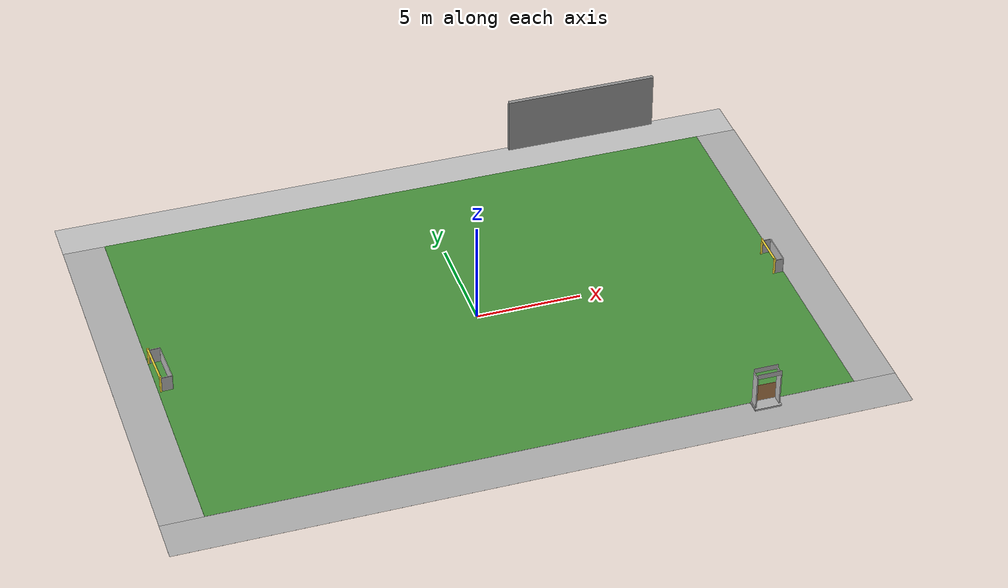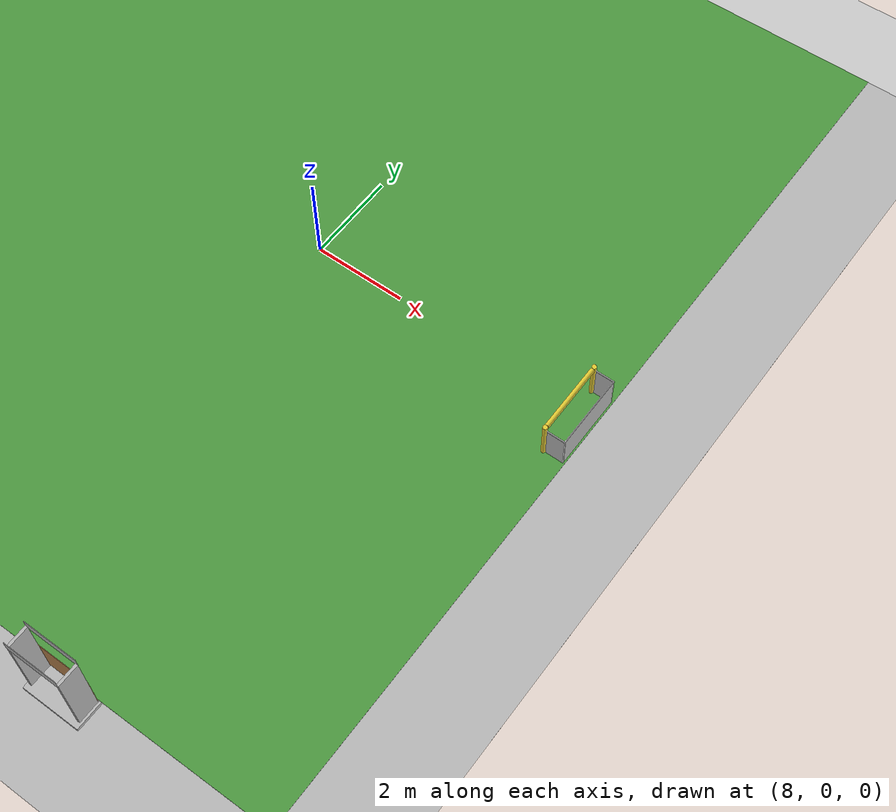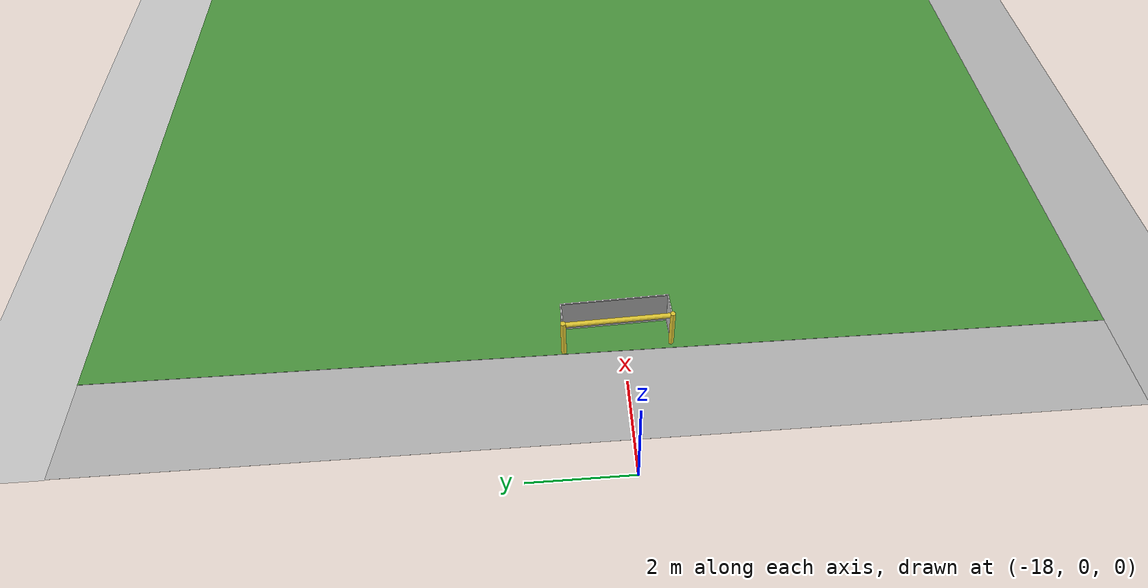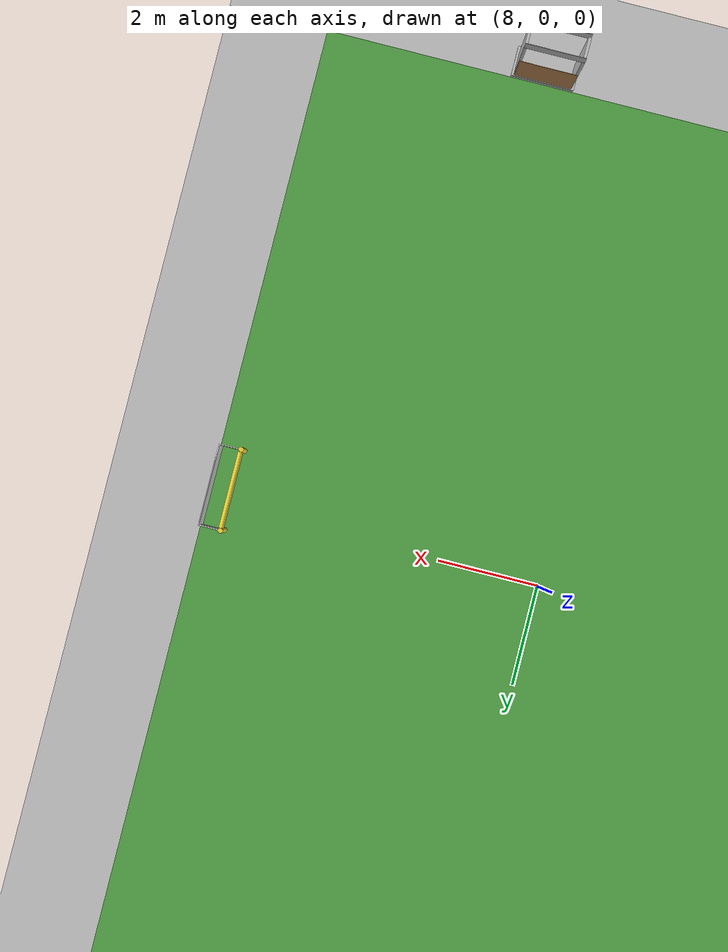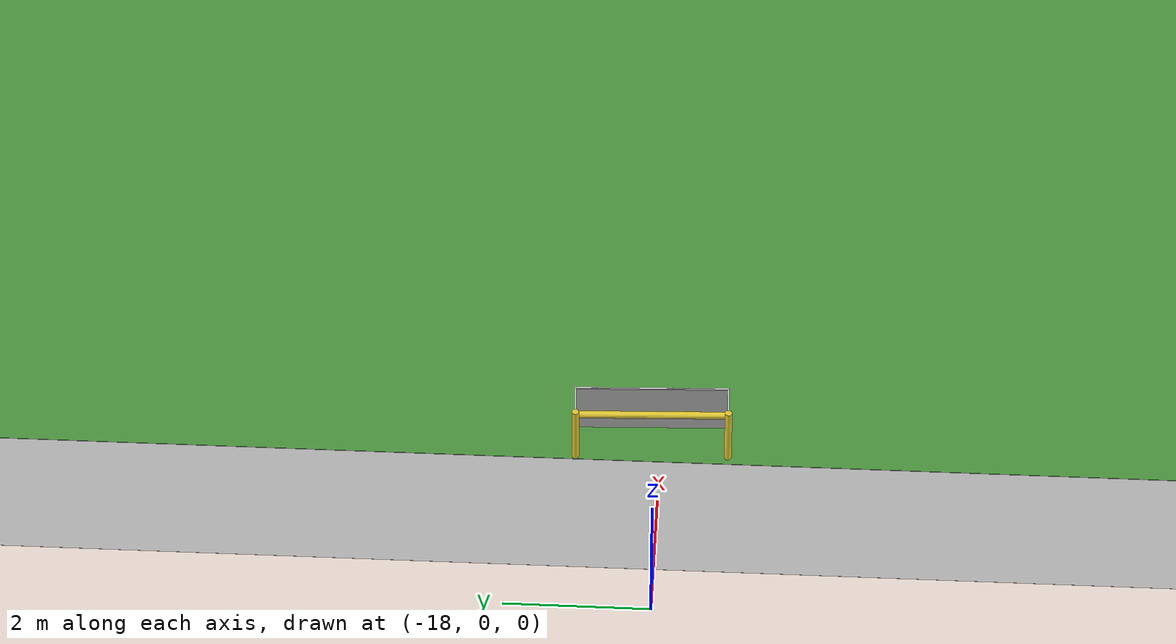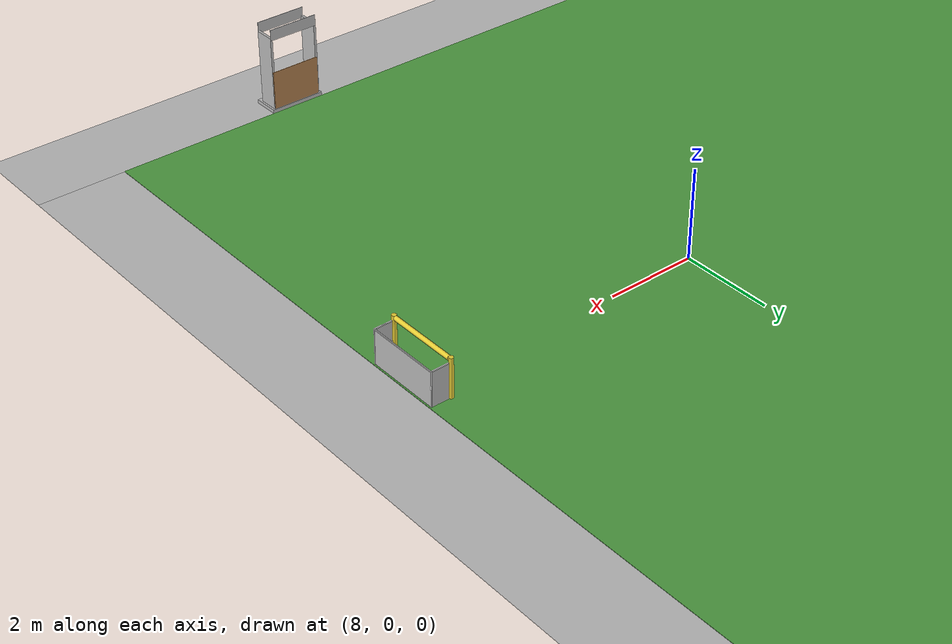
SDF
<sdf version="1.6">
 <world name="default">
  <physics name="default_physics" default="0" type="ode">
   <ode>
    <solver>
     <type>quick</type>
     <iters>100</iters>
     <sor>1</sor>
     <use_dynamic_moi_rescaling>0</use_dynamic_moi_rescaling>
    </solver>
    <constraints>
     <cfm>0</cfm>
     <erp>0.9</erp>
     <contact_max_correcting_vel>0.1</contact_max_correcting_vel>
     <contact_surface_layer>0</contact_surface_layer>
    </constraints>
   </ode>
   <real_time_update_rate>-1</real_time_update_rate>
   <max_step_size>0.001</max_step_size>
   <real_time_factor>1</real_time_factor>
  </physics>
  <model name="ground_plane">
   <static>1</static>
   <link name="link">
    <collision name="collision">
     <geometry><plane><normal>0 0 1</normal><size>5000 5000</size></plane></geometry>
     <surface><friction><ode><mu>1</mu><mu2>1</mu2></ode></friction></surface>
    </collision>
   </link>
  </model>
  <light name="sun" type="directional">
   <pose>0 0 10 0 -0 0</pose>
   <diffuse>0.8 0.8 0.8 1</diffuse>
   <specular>0.2 0.2 0.2 1</specular>
   <attenuation>
    <range>1000</range>
    <constant>0.9</constant>
    <linear>0.01</linear>
    <quadratic>0.001</quadratic>
   </attenuation>
   <direction>-0.5 0.1 -0.9</direction>
  </light>
  <gravity>0 0 -9.8</gravity>
  <magnetic_field>6e-06 2.3e-05 -4.2e-05</magnetic_field>
  <atmosphere type="adiabatic"/>
  <scene><ambient>0.4 0.4 0.4 1</ambient><background>0.7 0.7 0.7 1</background><shadows>1</shadows></scene>
  <spherical_coordinates>
   <surface_model>EARTH_WGS84</surface_model>
   <latitude_deg>0</latitude_deg>
   <longitude_deg>0</longitude_deg>
   <elevation>0</elevation>
   <heading_deg>0</heading_deg>
  </spherical_coordinates>
  <model name="robocup_3d_field">
   <static>1</static>
   <link name="field">
    <pose>0 0 0.01 0 -0 0</pose>
    <collision name="collision">
     <geometry><plane><normal>0 0 1</normal><size>30 20</size></plane></geometry>
     <surface><friction><ode><mu>100</mu><mu2>50</mu2></ode></friction></surface>
    </collision>
    <visual name="base1">
     <pose>0 11 0.001 0 -0 0</pose>
     <cast_shadows>0</cast_shadows>
     <geometry><plane><normal>0 0 1</normal><size>34 2</size></plane></geometry>
     <material>
      <script>
       <uri>model://robocup_3Dsim_field/materials/scripts/</uri>
       <uri>model://robocup_3Dsim_field/materials/textures/</uri>
       <name>RoboCup/FieldBorder</name>
      </script>
     </material>
    </visual>
    <visual name="base2">
     <pose>0 -11 0.001 0 -0 0</pose>
     <cast_shadows>0</cast_shadows>
     <geometry><plane><normal>0 0 1</normal><size>34 2</size></plane></geometry>
     <material>
      <script>
       <uri>model://robocup_3Dsim_field/materials/scripts/</uri>
       <uri>model://robocup_3Dsim_field/materials/textures/</uri>
       <name>RoboCup/FieldBorder</name>
      </script>
     </material>
    </visual>
    <visual name="base3">
     <pose>16 0 0.001 0 -0 0</pose>
     <cast_shadows>0</cast_shadows>
     <geometry><plane><normal>0 0 1</normal><size>2 20</size></plane></geometry>
     <material>
      <script>
       <uri>model://robocup_3Dsim_field/materials/scripts/</uri>
       <uri>model://robocup_3Dsim_field/materials/textures/</uri>
       <name>RoboCup/FieldBorder</name>
      </script>
     </material>
    </visual>
    <visual name="base4">
     <pose>-16 0 0.001 0 -0 0</pose>
     <cast_shadows>0</cast_shadows>
     <geometry><plane><normal>0 0 1</normal><size>2 20</size></plane></geometry>
     <material>
      <script>
       <uri>model://robocup_3Dsim_field/materials/scripts/</uri>
       <uri>model://robocup_3Dsim_field/materials/textures/</uri>
       <name>RoboCup/FieldBorder</name>
      </script>
     </material>
    </visual>
    <visual name="carpet">
     <cast_shadows>0</cast_shadows>
     <geometry><plane><normal>0 0 1</normal><size>30 20</size></plane></geometry>
     <material>
      <script>
       <uri>model://robocup_3Dsim_field/materials/scripts/</uri>
       <uri>model://robocup_3Dsim_field/materials/textures/</uri>
       <name>RoboCup/Grass</name>
      </script>
     </material>
    </visual>
   </link>
   <pose>-0.280458 0.370204 0 0 -0 0</pose>
  </model>
  <model name="RoboCup 2014 SPL Goal">
   <static>1</static>
   <link name="left_post">
    <pose>0 0.8 0.45 0 -0 0</pose>
    <collision name="collision">
     <geometry><cylinder><radius>0.05</radius><length>0.9</length></cylinder></geometry>
    </collision>
    <visual name="visual">
     <geometry><cylinder><radius>0.05</radius><length>0.9</length></cylinder></geometry>
     <material>
      <script><uri>file://media/materials/scripts/gazebo.material</uri><name>Gazebo/ZincYellow</name></script>
     </material>
    </visual>
   </link>
   <link name="left_support_horiz_lower">
    <pose>0.24 0.8 0.01 0 -0 0</pose>
    <collision name="collision"><geometry><box><size>0.38 0.02 0.02</size></box></geometry></collision>
    <visual name="visual">
     <geometry><box><size>0.38 0.02 0.02</size></box></geometry>
     <material>
      <script><uri>file://media/materials/scripts/gazebo.material</uri><name>Gazebo/White</name></script>
     </material>
    </visual>
   </link>
   <link name="left_support_horiz_upper">
    <pose>0.24 0.8 0.79 0 -0 0</pose>
    <collision name="collision"><geometry><box><size>0.38 0.02 0.02</size></box></geometry></collision>
    <visual name="visual">
     <geometry><box><size>0.38 0.02 0.02</size></box></geometry>
     <material>
      <script><uri>file://media/materials/scripts/gazebo.material</uri><name>Gazebo/White</name></script>
     </material>
    </visual>
   </link>
   <link name="left_support_vertical">
    <pose>0.44 0.8 0.4 3.14159 1.57079 3.14159</pose>
    <collision name="collision"><geometry><box><size>0.8 0.02 0.02</size></box></geometry></collision>
    <visual name="visual">
     <geometry><box><size>0.8 0.02 0.02</size></box></geometry>
     <material>
      <script><uri>file://media/materials/scripts/gazebo.material</uri><name>Gazebo/White</name></script>
     </material>
    </visual>
   </link>
   <link name="right_support_horiz_lower">
    <pose>0.24 -0.8 0.01 0 -0 0</pose>
    <collision name="collision"><geometry><box><size>0.38 0.02 0.02</size></box></geometry></collision>
    <visual name="visual">
     <geometry><box><size>0.38 0.02 0.02</size></box></geometry>
     <material>
      <script><uri>file://media/materials/scripts/gazebo.material</uri><name>Gazebo/White</name></script>
     </material>
    </visual>
   </link>
   <link name="right_support_horiz_upper">
    <pose>0.24 -0.8 0.79 0 -0 0</pose>
    <collision name="collision"><geometry><box><size>0.38 0.02 0.02</size></box></geometry></collision>
    <visual name="visual">
     <geometry><box><size>0.38 0.02 0.02</size></box></geometry>
     <material>
      <script><uri>file://media/materials/scripts/gazebo.material</uri><name>Gazebo/White</name></script>
     </material>
    </visual>
   </link>
   <link name="right_support_vertical">
    <pose>0.44 -0.8 0.4 3.14159 1.57079 3.14159</pose>
    <collision name="collision"><geometry><box><size>0.8 0.02 0.02</size></box></geometry></collision>
    <visual name="visual">
     <geometry><box><size>0.8 0.02 0.02</size></box></geometry>
     <material>
      <script><uri>file://media/materials/scripts/gazebo.material</uri><name>Gazebo/White</name></script>
     </material>
    </visual>
   </link>
   <link name="center_support_horiz_lower">
    <pose>0.44 0 0.01 3.14159 1.57079 3.14159</pose>
    <collision name="collision"><geometry><box><size>0.02 1.58 0.02</size></box></geometry></collision>
    <visual name="visual">
     <geometry><box><size>0.02 1.58 0.02</size></box></geometry>
     <material>
      <script><uri>file://media/materials/scripts/gazebo.material</uri><name>Gazebo/White</name></script>
     </material>
    </visual>
   </link>
   <link name="center_support_horiz_upper">
    <pose>0.44 0 0.79 3.14159 1.57079 3.14159</pose>
    <collision name="collision"><geometry><box><size>0.02 1.58 0.02</size></box></geometry></collision>
    <visual name="visual">
     <geometry><box><size>0.02 1.58 0.02</size></box></geometry>
     <material>
      <script><uri>file://media/materials/scripts/gazebo.material</uri><name>Gazebo/White</name></script>
     </material>
    </visual>
   </link>
   <link name="right_post">
    <pose>0 -0.8 0.45 0 -0 0</pose>
    <collision name="collision">
     <geometry><cylinder><radius>0.05</radius><length>0.9</length></cylinder></geometry>
    </collision>
    <visual name="visual">
     <geometry><cylinder><radius>0.05</radius><length>0.9</length></cylinder></geometry>
     <material>
      <script><uri>file://media/materials/scripts/gazebo.material</uri><name>Gazebo/ZincYellow</name></script>
     </material>
    </visual>
   </link>
   <link name="crossbar">
    <pose>0 0 0.85 1.57 1.57 0</pose>
    <collision name="collision">
     <geometry><cylinder><radius>0.05</radius><length>1.5</length></cylinder></geometry>
    </collision>
    <visual name="visual">
     <geometry><cylinder><radius>0.05</radius><length>1.5</length></cylinder></geometry>
     <material>
      <script><uri>file://media/materials/scripts/gazebo.material</uri><name>Gazebo/ZincYellow</name></script>
     </material>
    </visual>
   </link>
   <link name="center_net">
    <pose>0.44 0 0.4 0 -0 0</pose>
    <collision name="collision"><geometry><box><size>0.01 1.6 0.8</size></box></geometry></collision>
    <visual name="visual">
     <geometry><box><size>0.01 1.6 0.8</size></box></geometry>
     <material>
      <script>
       <uri>model://robocup09_spl_field/materials/scripts/</uri>
       <uri>model://robocup09_spl_field/materials/textures/</uri>
       <name>RoboCup/Net</name>
      </script>
     </material>
    </visual>
   </link>
   <link name="left_net">
    <pose>0.24 0.8 0.4 0 -0 0</pose>
    <collision name="collision"><geometry><box><size>0.38 0.01 0.76</size></box></geometry></collision>
    <visual name="visual">
     <geometry><box><size>0.38 0.01 0.76</size></box></geometry>
     <material>
      <script>
       <uri>model://robocup09_spl_field/materials/scripts/</uri>
       <uri>model://robocup09_spl_field/materials/textures/</uri>
       <name>RoboCup/Net</name>
      </script>
     </material>
    </visual>
   </link>
   <link name="right_net">
    <pose>0.24 -0.8 0.4 0 -0 0</pose>
    <collision name="collision"><geometry><box><size>0.38 0.01 0.76</size></box></geometry></collision>
    <visual name="visual">
     <geometry><box><size>0.38 0.01 0.76</size></box></geometry>
     <material>
      <script>
       <uri>model://robocup09_spl_field/materials/scripts/</uri>
       <uri>model://robocup09_spl_field/materials/textures/</uri>
       <name>RoboCup/Net</name>
      </script>
     </material>
    </visual>
   </link>
   <pose>14.2398 -0.350873 0 0 -0 0</pose>
  </model>
  <model name="robocup_3d_goal">
   <static>1</static>
   <link name="left_post">
    <pose>0 1.05 0.45 0 -0 0</pose>
    <collision name="collision">
     <geometry><cylinder><radius>0.05</radius><length>0.9</length></cylinder></geometry>
    </collision>
    <visual name="visual">
     <geometry><cylinder><radius>0.05</radius><length>0.9</length></cylinder></geometry>
     <material>
      <script><uri>file://media/materials/scripts/gazebo.material</uri><name>Gazebo/ZincYellow</name></script>
     </material>
    </visual>
   </link>
   <link name="left_support_horiz_lower">
    <pose>0.3 1.05 0.01 0 -0 0</pose>
    <collision name="collision"><geometry><box><size>0.5 0.02 0.02</size></box></geometry></collision>
    <visual name="visual">
     <geometry><box><size>0.5 0.02 0.02</size></box></geometry>
     <material>
      <script><uri>file://media/materials/scripts/gazebo.material</uri><name>Gazebo/White</name></script>
     </material>
    </visual>
   </link>
   <link name="left_support_horiz_upper">
    <pose>0.3 1.05 0.79 0 -0 0</pose>
    <collision name="collision"><geometry><box><size>0.5 0.02 0.02</size></box></geometry></collision>
    <visual name="visual">
     <geometry><box><size>0.5 0.02 0.02</size></box></geometry>
     <material>
      <script><uri>file://media/materials/scripts/gazebo.material</uri><name>Gazebo/White</name></script>
     </material>
    </visual>
   </link>
   <link name="left_support_vertical">
    <pose>0.56 1.05 0.4 3.14159 1.57079 3.14159</pose>
    <collision name="collision"><geometry><box><size>0.8 0.02 0.02</size></box></geometry></collision>
    <visual name="visual">
     <geometry><box><size>0.8 0.02 0.02</size></box></geometry>
     <material>
      <script><uri>file://media/materials/scripts/gazebo.material</uri><name>Gazebo/White</name></script>
     </material>
    </visual>
   </link>
   <link name="right_support_horiz_lower">
    <pose>0.3 -1.05 0.01 0 -0 0</pose>
    <collision name="collision"><geometry><box><size>0.5 0.02 0.02</size></box></geometry></collision>
    <visual name="visual">
     <geometry><box><size>0.5 0.02 0.02</size></box></geometry>
     <material>
      <script><uri>file://media/materials/scripts/gazebo.material</uri><name>Gazebo/White</name></script>
     </material>
    </visual>
   </link>
   <link name="right_support_horiz_upper">
    <pose>0.3 -1.05 0.79 0 -0 0</pose>
    <collision name="collision"><geometry><box><size>0.5 0.02 0.02</size></box></geometry></collision>
    <visual name="visual">
     <geometry><box><size>0.5 0.02 0.02</size></box></geometry>
     <material>
      <script><uri>file://media/materials/scripts/gazebo.material</uri><name>Gazebo/White</name></script>
     </material>
    </visual>
   </link>
   <link name="right_support_vertical">
    <pose>0.56 -1.05 0.4 3.14159 1.57079 3.14159</pose>
    <collision name="collision"><geometry><box><size>0.8 0.02 0.02</size></box></geometry></collision>
    <visual name="visual">
     <geometry><box><size>0.8 0.02 0.02</size></box></geometry>
     <material>
      <script><uri>file://media/materials/scripts/gazebo.material</uri><name>Gazebo/White</name></script>
     </material>
    </visual>
   </link>
   <link name="center_support_horiz_lower">
    <pose>0.56 0 0.01 3.14159 1.57079 3.14159</pose>
    <collision name="collision"><geometry><box><size>0.02 2.08 0.02</size></box></geometry></collision>
    <visual name="visual">
     <geometry><box><size>0.02 2.08 0.02</size></box></geometry>
     <material>
      <script><uri>file://media/materials/scripts/gazebo.material</uri><name>Gazebo/White</name></script>
     </material>
    </visual>
   </link>
   <link name="center_support_horiz_upper">
    <pose>0.56 0 0.79 3.14159 1.57079 3.14159</pose>
    <collision name="collision"><geometry><box><size>0.02 2.08 0.02</size></box></geometry></collision>
    <visual name="visual">
     <geometry><box><size>0.02 2.08 0.02</size></box></geometry>
     <material>
      <script><uri>file://media/materials/scripts/gazebo.material</uri><name>Gazebo/White</name></script>
     </material>
    </visual>
   </link>
   <link name="right_post">
    <pose>0 -1.05 0.45 0 -0 0</pose>
    <collision name="collision">
     <geometry><cylinder><radius>0.05</radius><length>0.9</length></cylinder></geometry>
    </collision>
    <visual name="visual">
     <geometry><cylinder><radius>0.05</radius><length>0.9</length></cylinder></geometry>
     <material>
      <script><uri>file://media/materials/scripts/gazebo.material</uri><name>Gazebo/ZincYellow</name></script>
     </material>
    </visual>
   </link>
   <link name="crossbar">
    <pose>0 0 0.85 1.57 1.57 0</pose>
    <collision name="collision">
     <geometry><cylinder><radius>0.05</radius><length>2</length></cylinder></geometry>
    </collision>
    <visual name="visual">
     <geometry><cylinder><radius>0.05</radius><length>2</length></cylinder></geometry>
     <material>
      <script><uri>file://media/materials/scripts/gazebo.material</uri><name>Gazebo/ZincYellow</name></script>
     </material>
    </visual>
   </link>
   <link name="center_net">
    <pose>0.56 0 0.4 0 -0 0</pose>
    <collision name="collision"><geometry><box><size>0.01 2.1 0.8</size></box></geometry></collision>
    <visual name="visual">
     <geometry><box><size>0.01 2.1 0.8</size></box></geometry>
     <material>
      <script>
       <uri>model://robocup09_spl_field/materials/scripts/</uri>
       <uri>model://robocup09_spl_field/materials/textures/</uri>
       <name>RoboCup/Net</name>
      </script>
     </material>
    </visual>
   </link>
   <link name="left_net">
    <pose>0.3 1.05 0.4 0 -0 0</pose>
    <collision name="collision"><geometry><box><size>0.5 0.01 0.76</size></box></geometry></collision>
    <visual name="visual">
     <geometry><box><size>0.5 0.01 0.76</size></box></geometry>
     <material>
      <script>
       <uri>model://robocup09_spl_field/materials/scripts/</uri>
       <uri>model://robocup09_spl_field/materials/textures/</uri>
       <name>RoboCup/Net</name>
      </script>
     </material>
    </visual>
   </link>
   <link name="right_net">
    <pose>0.3 -1.05 0.4 0 -0 0</pose>
    <collision name="collision"><geometry><box><size>0.5 0.01 0.76</size></box></geometry></collision>
    <visual name="visual">
     <geometry><box><size>0.5 0.01 0.76</size></box></geometry>
     <material>
      <script>
       <uri>model://robocup09_spl_field/materials/scripts/</uri>
       <uri>model://robocup09_spl_field/materials/textures/</uri>
       <name>RoboCup/Net</name>
      </script>
     </material>
    </visual>
   </link>
   <pose>-15.1906 0.117807 0 0 -0 0.036898</pose>
  </model>
  <model name="grey_wall">
   <static>1</static>
   <link name="link">
    <pose>0 0 1.4 0 -0 0</pose>
    <collision name="collision"><geometry><box><size>7.5 0.2 2.8</size></box></geometry></collision>
    <visual name="visual">
     <cast_shadows>0</cast_shadows>
     <geometry><box><size>7.5 0.2 2.8</size></box></geometry>
     <material>
      <script>
       <uri>model://grey_wall/materials/scripts</uri>
       <uri>model://grey_wall/materials/textures</uri>
       <name>vrc/grey_wall</name>
      </script>
     </material>
    </visual>
   </link>
   <pose>9.22771 12.1917 0 0 -0 0</pose>
  </model>
  <model name="frc2016_drawbridge">
   <link name="base">
    <inertial>
     <mass>10</mass>
     <pose>0 0 1 0 -0 0</pose>
     <inertia><ixx>3.64907</ixx><ixy>0</ixy><ixz>0</ixz><iyy>4.67075</iyy><iyz>0</iyz><izz>1.66649</izz></inertia>
    </inertial>
    <visual name="platform">
     <pose>0 0 0.0425 0 -0 0</pose>
     <geometry><box><size>1.27 0.5969 0.085</size></box></geometry>
    </visual>
    <collision name="platform">
     <pose>0 0 0.0425 0 -0 0</pose>
     <geometry><box><size>1.27 0.5969 0.085</size></box></geometry>
    </collision>
    <visual name="right_wall">
     <pose>0.55879 0.04444 0.889 0 -0 0</pose>
     <geometry><box><size>0.05715 0.45698 1.77165</size></box></geometry>
    </visual>
    <collision name="right_wall">
     <pose>0.55879 0.04444 0.889 0 -0 0</pose>
     <geometry><box><size>0.05715 0.45698 1.77165</size></box></geometry>
    </collision>
    <visual name="left_wall">
     <pose>-0.55879 0.04444 0.889 0 -0 0</pose>
     <geometry><box><size>0.05715 0.45698 1.77165</size></box></geometry>
    </visual>
    <collision name="left_wall">
     <pose>-0.55879 0.04444 0.889 0 -0 0</pose>
     <geometry><box><size>0.05715 0.45698 1.77165</size></box></geometry>
    </collision>
    <visual name="front_upper_wall">
     <pose>0 0.27611 1.84286 0 -0 0</pose>
     <geometry><box><size>1.1557 0.006347 0.254</size></box></geometry>
    </visual>
    <collision name="front_upper_wall">
     <pose>0 0.27611 1.84286 0 -0 0</pose>
     <geometry><box><size>1.1557 0.006347 0.254</size></box></geometry>
    </collision>
    <visual name="back_upper_wall">
     <pose>0 -0.18722 1.84286 0 -0 0</pose>
     <geometry><box><size>1.1557 0.006347 0.254</size></box></geometry>
    </visual>
    <collision name="back_upper_wall">
     <pose>0 -0.18722 1.84286 0 -0 0</pose>
     <geometry><box><size>1.1557 0.006347 0.254</size></box></geometry>
    </collision>
   </link>
   <link name="bridge">
    <pose>0 0.28245 0.50577 0 -0 0</pose>
    <inertial>
     <mass>2</mass>
     <pose>0 -0.28245 -0.50577 0 -0 0</pose>
     <inertia>
      <ixx>0.139361</ixx>
      <ixy>0</ixy>
      <ixz>0</ixz>
      <iyy>0.357088</iyy>
      <iyz>0</iyz>
      <izz>0.217741</izz>
     </inertia>
    </inertial>
    <visual name="visual">
     <geometry><box><size>1.14298 0.006347 0.9144</size></box></geometry>
     <material><script><name>Gazebo/WoodFloor</name><uri>__default__</uri></script></material>
    </visual>
    <collision name="collision"><geometry><box><size>1.14298 0.006347 0.9144</size></box></geometry></collision>
   </link>
   <joint name="bridge_joint" type="revolute">
    <pose>0 0 -0.4172 0 -0 0</pose>
    <parent>base</parent>
    <child>bridge</child>
    <axis>
     <xyz>1 0 0</xyz>
     <limit><lower>-2</lower><upper>0</upper></limit>
     <use_parent_model_frame>0</use_parent_model_frame>
     <dynamics><spring_reference>0</spring_reference><spring_stiffness>0</spring_stiffness></dynamics>
    </axis>
   </joint>
   <pose>10.3493 -9.94412 0.01 0 -0 -1e-06</pose>
  </model>
 </world>
</sdf>
